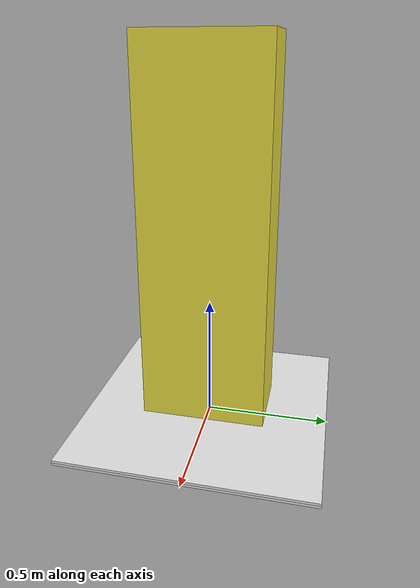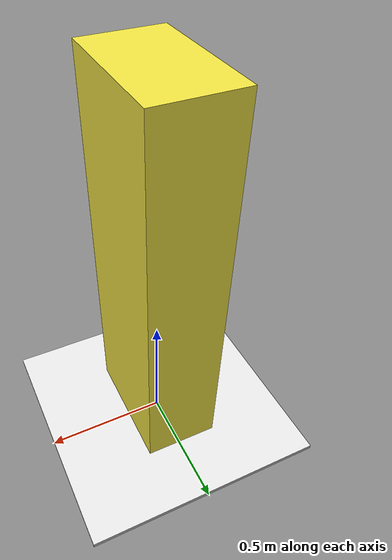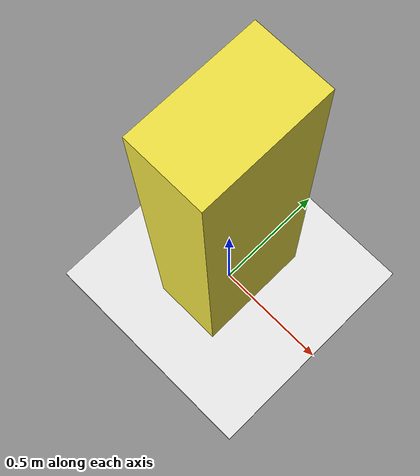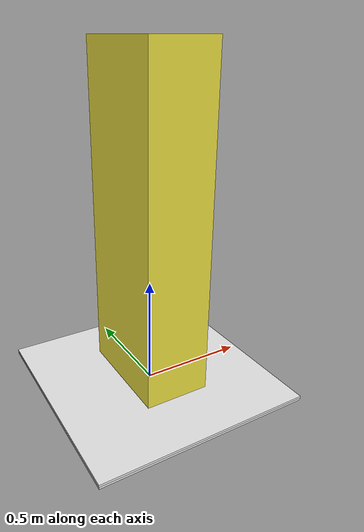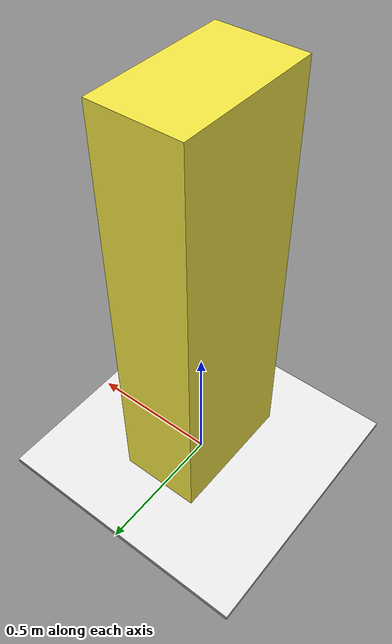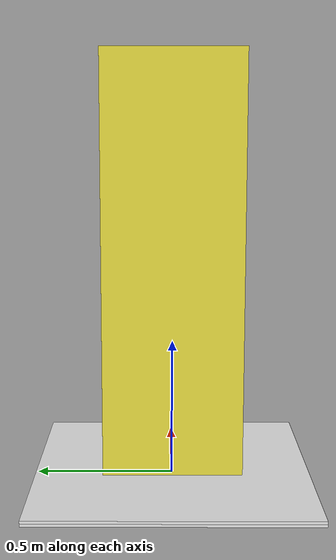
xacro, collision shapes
<?xml version="1.0"?>
<robot name="person" xmlns:xacro="http://ros.org/wiki/xacro">

  <xacro:property name="xyz" value="2 2 0" />
    <xacro:property name="person_width_x" value="0.3" />
    <xacro:property name="person_width_y" value="0.5" />
    <xacro:property name="person_height" value="1.5" />

    <xacro:macro name="default_inertial" params="mass">
    <inertial>
      <mass value="${mass}" />
      <inertia ixx="1.0" ixy="0.0" ixz="0.0" iyy="1.0" iyz="0.0" izz="1.0" />
    </inertial>
  </xacro:macro>

    <link name="world" />

    <link name="x_axis_link">
        <visual>
          <geometry>
            <box size="1.0 1.0 0.01"/>
          </geometry>
          <origin xyz="0 0 0" rpy="0 0 0"/>
        </visual>
        <collision>
          <geometry>
            <box size="1.0 1.0 0.01"/>
          </geometry>
          <origin xyz="0 0 0" rpy="0 0 0"/>
        </collision>
        <xacro:default_inertial mass="3"/>
    </link>

    <gazebo reference="x_axis_link">
      <material>Gazebo/White</material>
      <mu1>0.2</mu1>
      <mu2>0.2</mu2>
  </gazebo>

  <joint name="x_axis_joint" type="prismatic">
    <axis xyz="1 0 0"/>
    <limit lower="-5.0" upper="5.0" velocity="100" effort="10000"/>
    <parent link="world"/>
    <child link="x_axis_link"/>
    <origin xyz="0 0 0.01" />
    <dynamics damping="1.0"/>
  </joint>

  <transmission name="person_tran1">
    <type>transmission_interface/SimpleTransmission</type>
    <joint name="x_axis_joint">
        <hardwareInterface>hardware_interface/EffortJointInterface</hardwareInterface>
    </joint>
    <actuator name="person_motor1">
        <hardwareInterface>hardware_interface/EffortJointInterface</hardwareInterface>
        <mechanicalReduction>1</mechanicalReduction>
    </actuator>
</transmission>

    <link name="y_axis_link">
      <visual>
        <geometry>
          <box size="1.0 1.0 0.01"/>
        </geometry>
        <origin xyz="0 0 0" rpy="0 0 0"/>
      </visual>
      <collision>
        <geometry>
          <box size="1.0 1.0 0.01"/>
        </geometry>
        <origin xyz="0 0 0" rpy="0 0 0"/>
      </collision>
      <xacro:default_inertial mass="3"/>
  </link>

  <gazebo reference="y_axis_link">
    <material>Gazebo/White</material>
    <mu1>0.2</mu1>
    <mu2>0.2</mu2>
</gazebo>

<joint name="y_axis_joint" type="prismatic">
  <axis xyz="0 1 0"/>
  <limit lower="-5.0" upper="5.0" velocity="100" effort="10000"/>
  <parent link="x_axis_link"/>
  <child link="y_axis_link"/>
  <origin xyz="0 0 0.01" />
  <dynamics damping="1.0"/>
</joint>

<transmission name="person_tran2">
  <type>transmission_interface/SimpleTransmission</type>
  <joint name="y_axis_joint">
      <hardwareInterface>hardware_interface/EffortJointInterface</hardwareInterface>
  </joint>
  <actuator name="person_motor2">
      <hardwareInterface>hardware_interface/EffortJointInterface</hardwareInterface>
      <mechanicalReduction>1</mechanicalReduction>
  </actuator>
</transmission>

  <link name="person">
    <visual>
      <geometry>
        <mesh filename="/usr/share/gazebo-11/media/models/stand.dae" scale="0.5 0.5 0.5"/>
      </geometry>
      <origin xyz="0 0 ${person_height/2}" rpy="0 0 0"/>
    </visual>
    <collision>
      <geometry>
        <box size="${person_width_x} ${person_width_y} ${person_height}"/>
      </geometry>
      <origin xyz="0 0 ${person_height/2}" rpy="0 0 0"/>
      <surface>
        <friction>
          <ode>
            <mu>0.01</mu>
            <mu2>0.01</mu2>
          </ode>
        </friction>
      </surface>
    </collision>
    <xacro:default_inertial mass="70"/>
  </link>

  <gazebo reference="person">
    <mu1>0.2</mu1>
    <mu2>0.2</mu2>
</gazebo>

  <joint name="person_link_joint" type="fixed">
    <parent link="y_axis_link"/>
    <child link="person"/>
    <origin xyz="0 0 0.025" />
  </joint>

  <gazebo>
    <plugin name="gazebo_ros_control" filename="libgazebo_ros_control.so">
      <robotNamespace>/person</robotNamespace>
      <robotParam>/person_description</robotParam>
    </plugin>
  </gazebo>

</robot>
